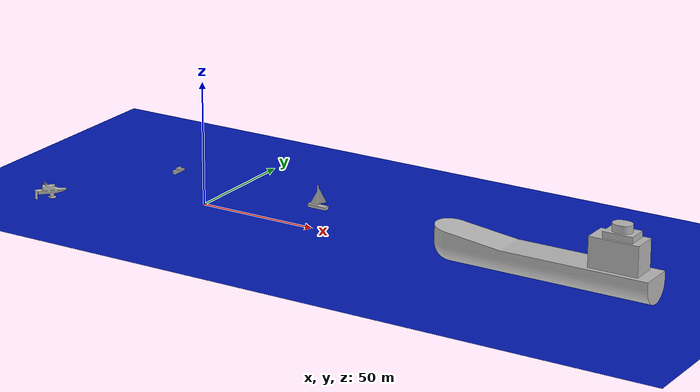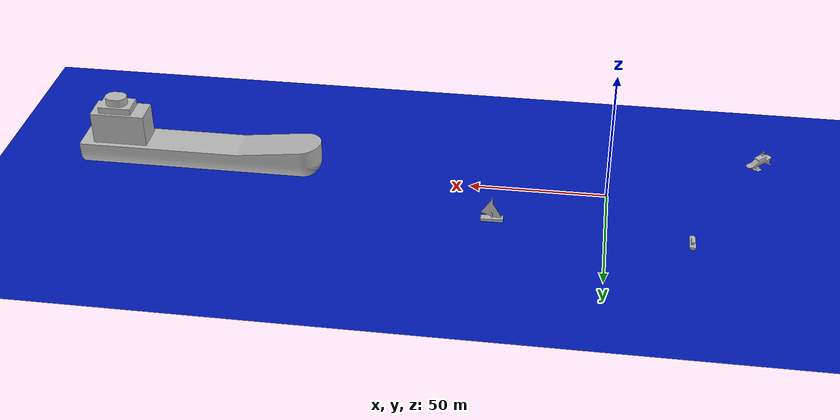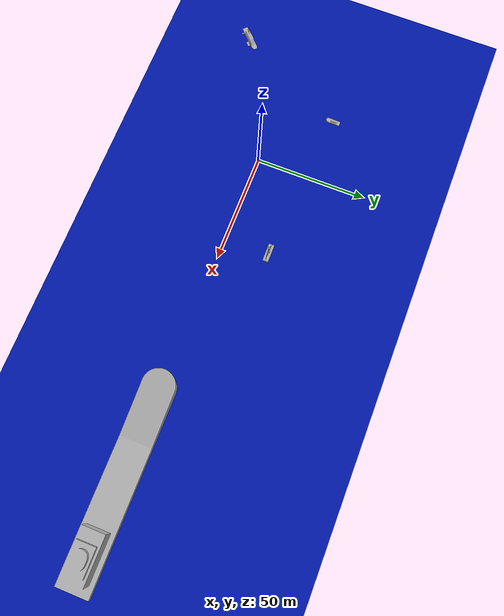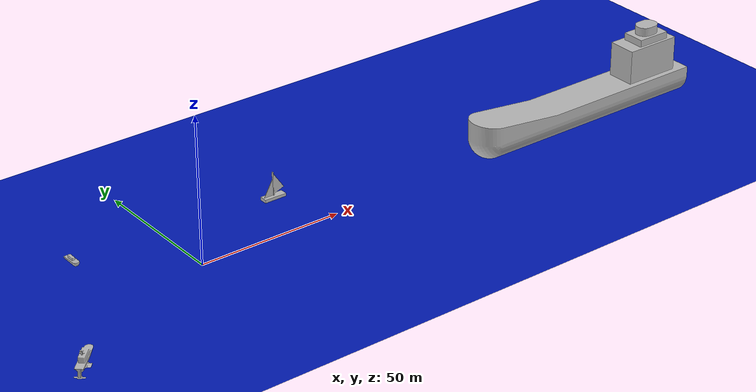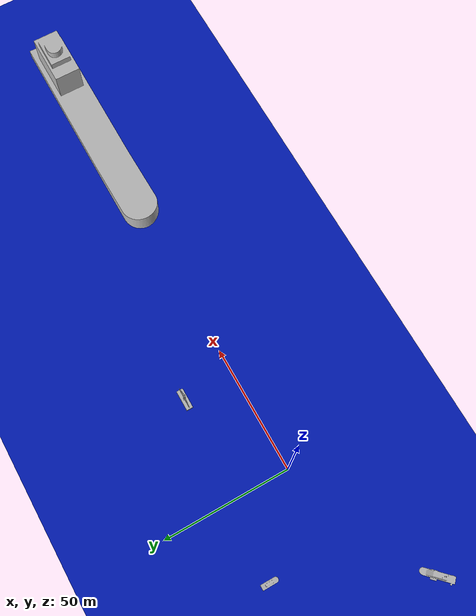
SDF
<sdf version="1.9">
 <world name="colav_scenario">
  <plugin filename="gz-sim-physics-system" name="gz::sim::systems::Physics"/>
  <plugin filename="gz-sim-sensors-system" name="gz::sim::systems::Sensors">
   <render_engine>ogre2</render_engine>
  </plugin>
  <plugin filename="gz-sim-scene-broadcaster-system" name="gz::sim::systems::SceneBroadcaster"/>
  <plugin filename="gz-sim-user-commands-system" name="gz::sim::systems::UserCommands"/>
  <scene><ambient>0.8 0.8 0.8 1</ambient><background>0.7 0.9 1.0 1</background></scene>
  <light type="directional" name="sun">
   <pose>0 0 10 0 0 0</pose>
   <diffuse>1 1 1 1</diffuse>
   <specular>0.5 0.5 0.5 1</specular>
   <direction>-0.3 0.3 -0.9</direction>
  </light>
  <include><uri>model://ocean_plate</uri></include>
  <include><name>sail_boat</name><uri>model://sail_boat_vessel</uri><pose>40 20 0 0 0 3.14159</pose></include>
  <include>
   <name>small_motor_boat</name>
   <uri>model://small_motor_boat_vessel</uri>
   <pose>-30 25 0 0 0 -1.5708</pose>
  </include>
  <include>
   <name>super_tanker</name>
   <uri>model://super_tanker_vessel</uri>
   <pose>150 0 0 0 0 3.14159</pose>
  </include>
  <include>
   <name>hydrofoil_contact</name>
   <uri>model://hydrofoil_vessel</uri>
   <pose>-60 -30 0 0 0 0.7854</pose>
  </include>
 </world>
</sdf>

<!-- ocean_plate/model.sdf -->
<sdf version="1.9">
  <model name="ocean_plate">
    <static>true</static>
    <link name="link">
      <collision name="collision">
        <geometry>
          <plane>
            <normal>0 0 1</normal>
            <size>10000 10000</size>
          </plane>
        </geometry>
      </collision>
      <visual name="visual">
        <geometry>
          <plane>
            <normal>0 0 1</normal>
            <size>10000 10000</size>
          </plane>
        </geometry>
        <material>
          <ambient>0.0 0.05 0.8 1</ambient>
          <diffuse>0.0 0.1 0.7 1</diffuse>
          <specular>0.3 0.3 0.3 1</specular>
        </material>
      </visual>
      <pose>0 0 0 0 0 0</pose>
    </link>
    <pose>0 0 0 0 0 0</pose>
  </model>
</sdf>

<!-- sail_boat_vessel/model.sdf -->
<sdf version="1.9">
  <model name="sail_boat_vessel">
    <static>true</static>
    <link name="base_link">
      <visual name="visual">
        <geometry>
          <mesh>
            <uri>meshes/SailBoat.obj</uri>
            <scale>8 8 8</scale>
          </mesh>
        </geometry>
      </visual>
      <collision name="collision">
        <pose>0 0 4.336 0 0 0</pose>
        <geometry>
          <box>
            <size>8.0 2.56 10.28</size>
          </box>
        </geometry>
      </collision>
    </link>
  </model>
</sdf>

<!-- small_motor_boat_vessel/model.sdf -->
<sdf version="1.9">
  <model name="small_motor_boat_vessel">
    <static>true</static>
    <link name="base_link">
      <visual name="visual">
        <geometry>
          <mesh>
            <uri>meshes/SmallMotorBoat.obj</uri>
            <scale>0.005 0.005 0.005</scale>
          </mesh>
        </geometry>
      </visual>
      <collision name="collision">
        <pose>0 0 1.1 0 0 0</pose>
        <geometry>
          <box>
            <size>6.5 2.1 2.2</size>
          </box>
        </geometry>
      </collision>
    </link>
  </model>
</sdf>

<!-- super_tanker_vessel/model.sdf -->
<sdf version="1.9">
  <model name="super_tanker_vessel">
    <static>true</static>
    <link name="base_link">
      <visual name="visual">
        <geometry>
          <mesh>
            <uri>meshes/SuperTanker.obj</uri>
            <scale>0.001 0.001 0.001</scale>
          </mesh>
        </geometry>
      </visual>
      <collision name="collision">
        <pose>0 0 14 0 0 0</pose>
        <geometry>
          <box>
            <size>90 14 28</size>
          </box>
        </geometry>
      </collision>
    </link>
  </model>
</sdf>

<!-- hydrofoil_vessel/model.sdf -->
<sdf version="1.9">
  <model name="hydrofoil_vessel">
    <static>true</static>
    <link name="base_link">
      <visual name="visual">
        <geometry>
          <mesh>
            <uri>meshes/hydrofoil.obj</uri>
            <scale>1 1 1</scale>
          </mesh>
        </geometry>
      </visual>
      <collision name="collision">
        <pose>6.15 -0.025 3.375 0 0 0</pose>
        <geometry>
          <box>
            <size>12.7 3.45 6.85</size>
          </box>
        </geometry>
      </collision>
    </link>
  </model>
</sdf>
